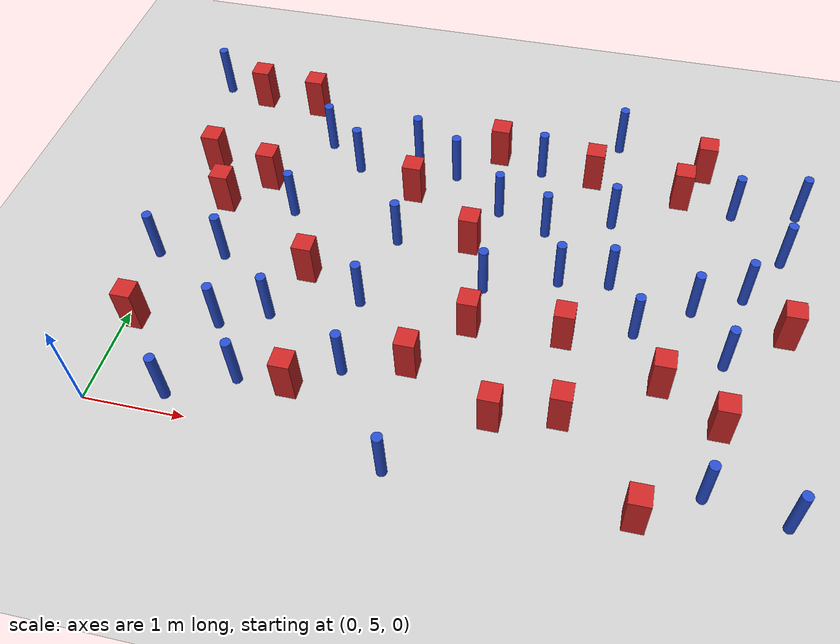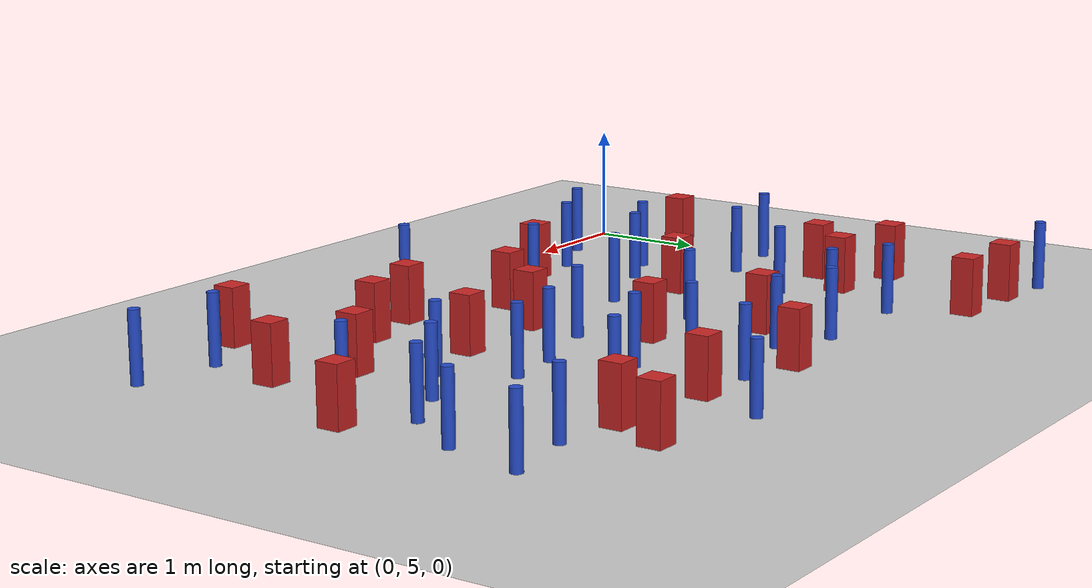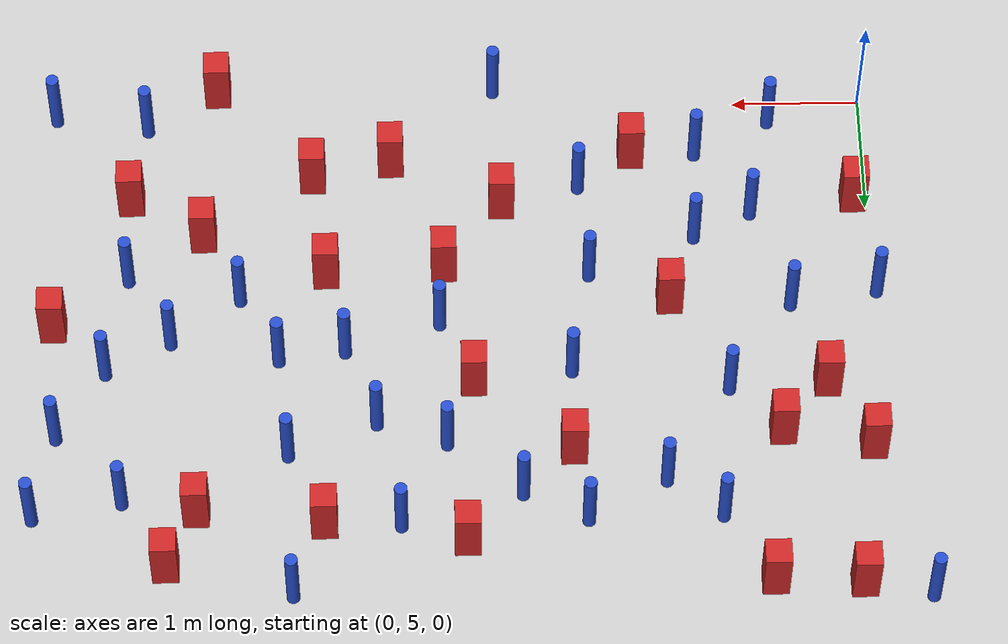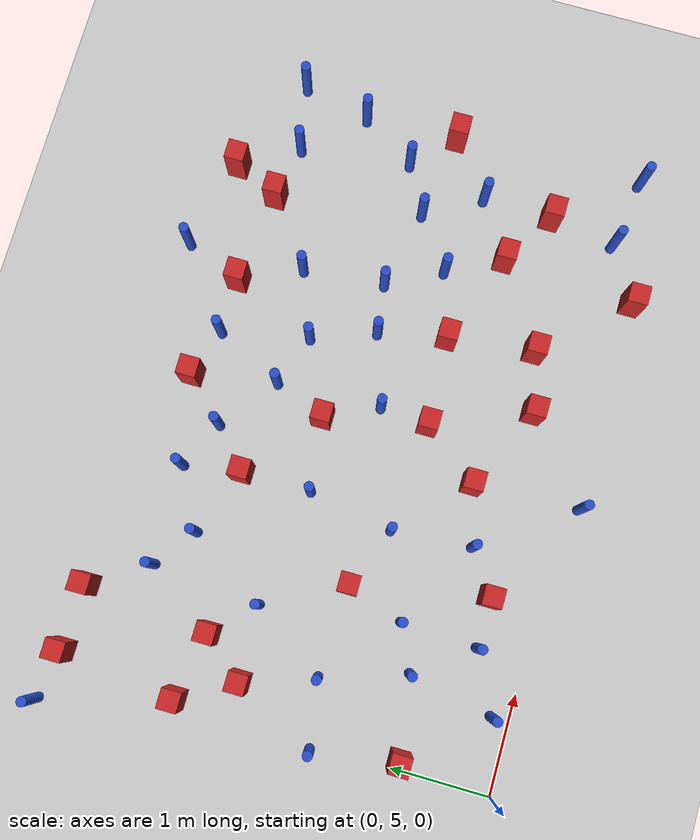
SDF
<sdf version="1.6">
 <world name="default">
  <model name="ground_plane">
   <static>1</static>
   <link name="link">
    <collision name="collision">
     <geometry><plane><normal>0 0 1</normal><size>100 100</size></plane></geometry>
     <surface><friction><ode><mu>100</mu><mu2>50</mu2></ode></friction></surface>
    </collision>
    <visual name="visual">
     <cast_shadows>0</cast_shadows>
     <geometry><plane><normal>0 0 1</normal><size>100 100</size></plane></geometry>
     <material>
      <ambient>1.0 1.0 1.0 1.0</ambient>
      <diffuse>0.8 0.8 0.8 1.0</diffuse>
      <specular>0.01 0.01 0.01 1.000000</specular>
     </material>
    </visual>
   </link>
  </model>
  <model name="square_post_obstacle1">
   <static>true</static>
   <pose>5.77959936031 5.86729845699 -4.36207812815e-07 3.75137919937e-06 9.77721102514e-07 2.47381364184e-05</pose>
   <link name="link">
    <pose>0 0 0.25 0 -0 0</pose>
    <inertial>
     <mass>100</mass>
     <inertia>
      <ixx>0.166667</ixx>
      <ixy>0</ixy>
      <ixz>0</ixz>
      <iyy>0.166667</iyy>
      <iyz>0</iyz>
      <izz>0.166667</izz>
     </inertia>
    </inertial>
    <collision name="collision"><geometry><box><size>.2 .2 .5</size></box></geometry></collision>
    <visual name="visual">
     <geometry><box><size>.2 .2 .5</size></box></geometry>
     <material>
      <script><name>Gazebo/Red</name><uri>file://media/materials/scripts/gazebo.material</uri></script>
     </material>
    </visual>
   </link>
  </model>
  <model name="pole_obstacle3">
   <static>true</static>
   <pose>5.80286417733 8.57099303402 -3.09024884793e-07 -7.19054271912e-07 -2.1131507513e-07 -1.93935509261e-07</pose>
   <link name="link">
    <pose>0 0 0.3 0 -0 0</pose>
    <inertial>
     <mass>1</mass>
     <inertia><ixx>0.145833</ixx><ixy>0</ixy><ixz>0</ixz><iyy>0.145833</iyy><iyz>0</iyz><izz>0.125</izz></inertia>
    </inertial>
    <collision name="collision">
     <geometry><cylinder><radius>0.05</radius><length>.6</length></cylinder></geometry>
    </collision>
    <visual name="visual">
     <geometry><cylinder><radius>0.05</radius><length>.6</length></cylinder></geometry>
     <material>
      <script><name>Gazebo/Blue</name><uri>file://media/materials/scripts/gazebo.material</uri></script>
     </material>
    </visual>
   </link>
  </model>
  <model name="pole_obstacle9">
   <static>true</static>
   <pose>4.54398680285 8.18161655679 -3.09024884793e-07 -7.19054271912e-07 -2.1131507513e-07 -1.93935509261e-07</pose>
   <link name="link">
    <pose>0 0 0.3 0 -0 0</pose>
    <inertial>
     <mass>1</mass>
     <inertia><ixx>0.145833</ixx><ixy>0</ixy><ixz>0</ixz><iyy>0.145833</iyy><iyz>0</iyz><izz>0.125</izz></inertia>
    </inertial>
    <collision name="collision">
     <geometry><cylinder><radius>0.05</radius><length>.6</length></cylinder></geometry>
    </collision>
    <visual name="visual">
     <geometry><cylinder><radius>0.05</radius><length>.6</length></cylinder></geometry>
     <material>
      <script><name>Gazebo/Blue</name><uri>file://media/materials/scripts/gazebo.material</uri></script>
     </material>
    </visual>
   </link>
  </model>
  <model name="pole_obstacle12">
   <static>true</static>
   <pose>3.68674259415 8.8054271333 -3.09024884848e-07 -7.19054271902e-07 -2.11315075199e-07 -1.93935509286e-07</pose>
   <link name="link">
    <pose>0 0 0.3 0 -0 0</pose>
    <inertial>
     <mass>1</mass>
     <inertia><ixx>0.145833</ixx><ixy>0</ixy><ixz>0</ixz><iyy>0.145833</iyy><iyz>0</iyz><izz>0.125</izz></inertia>
    </inertial>
    <collision name="collision">
     <geometry><cylinder><radius>0.05</radius><length>.6</length></cylinder></geometry>
    </collision>
    <visual name="visual">
     <geometry><cylinder><radius>0.05</radius><length>.6</length></cylinder></geometry>
     <material>
      <script><name>Gazebo/Blue</name><uri>file://media/materials/scripts/gazebo.material</uri></script>
     </material>
    </visual>
   </link>
  </model>
  <model name="square_post_obstacle16">
   <static>true</static>
   <pose>0.765612418779 8.0427565189 -4.36207812815e-07 3.75137919937e-06 9.77721102514e-07 2.47381364184e-05</pose>
   <link name="link">
    <pose>0 0 0.25 0 -0 0</pose>
    <inertial>
     <mass>100</mass>
     <inertia>
      <ixx>0.166667</ixx>
      <ixy>0</ixy>
      <ixz>0</ixz>
      <iyy>0.166667</iyy>
      <iyz>0</iyz>
      <izz>0.166667</izz>
     </inertia>
    </inertial>
    <collision name="collision"><geometry><box><size>.2 .2 .5</size></box></geometry></collision>
    <visual name="visual">
     <geometry><box><size>.2 .2 .5</size></box></geometry>
     <material>
      <script><name>Gazebo/Red</name><uri>file://media/materials/scripts/gazebo.material</uri></script>
     </material>
    </visual>
   </link>
  </model>
  <model name="square_post_obstacle17">
   <static>true</static>
   <pose>4.35246748363 5.68475245587 -4.36207812815e-07 3.75137919937e-06 9.77721102514e-07 2.47381364184e-05</pose>
   <link name="link">
    <pose>0 0 0.25 0 -0 0</pose>
    <inertial>
     <mass>100</mass>
     <inertia>
      <ixx>0.166667</ixx>
      <ixy>0</ixy>
      <ixz>0</ixz>
      <iyy>0.166667</iyy>
      <iyz>0</iyz>
      <izz>0.166667</izz>
     </inertia>
    </inertial>
    <collision name="collision"><geometry><box><size>.2 .2 .5</size></box></geometry></collision>
    <visual name="visual">
     <geometry><box><size>.2 .2 .5</size></box></geometry>
     <material>
      <script><name>Gazebo/Red</name><uri>file://media/materials/scripts/gazebo.material</uri></script>
     </material>
    </visual>
   </link>
  </model>
  <model name="pole_obstacle30">
   <static>true</static>
   <pose>5.45330103278 7.1637213019 -3.09024884793e-07 -7.19054271911e-07 -2.1131507516e-07 -1.93935509277e-07</pose>
   <link name="link">
    <pose>0 0 0.3 0 -0 0</pose>
    <inertial>
     <mass>1</mass>
     <inertia><ixx>0.145833</ixx><ixy>0</ixy><ixz>0</ixz><iyy>0.145833</iyy><iyz>0</iyz><izz>0.125</izz></inertia>
    </inertial>
    <collision name="collision">
     <geometry><cylinder><radius>0.05</radius><length>.6</length></cylinder></geometry>
    </collision>
    <visual name="visual">
     <geometry><cylinder><radius>0.05</radius><length>.6</length></cylinder></geometry>
     <material>
      <script><name>Gazebo/Blue</name><uri>file://media/materials/scripts/gazebo.material</uri></script>
     </material>
    </visual>
   </link>
  </model>
  <model name="square_post_obstacle25">
   <static>true</static>
   <pose>1.84017505871 5.49522138336 -4.36207812815e-07 3.75137919937e-06 9.77721102514e-07 2.47381364184e-05</pose>
   <link name="link">
    <pose>0 0 0.25 0 -0 0</pose>
    <inertial>
     <mass>100</mass>
     <inertia>
      <ixx>0.166667</ixx>
      <ixy>0</ixy>
      <ixz>0</ixz>
      <iyy>0.166667</iyy>
      <iyz>0</iyz>
      <izz>0.166667</izz>
     </inertia>
    </inertial>
    <collision name="collision"><geometry><box><size>.2 .2 .5</size></box></geometry></collision>
    <visual name="visual">
     <geometry><box><size>.2 .2 .5</size></box></geometry>
     <material>
      <script><name>Gazebo/Red</name><uri>file://media/materials/scripts/gazebo.material</uri></script>
     </material>
    </visual>
   </link>
  </model>
  <model name="square_post_obstacle30">
   <static>true</static>
   <pose>3.33337265653 6.52519556851 -4.36207812815e-07 3.75137919937e-06 9.77721102514e-07 2.47381364184e-05</pose>
   <link name="link">
    <pose>0 0 0.25 0 -0 0</pose>
    <inertial>
     <mass>100</mass>
     <inertia>
      <ixx>0.166667</ixx>
      <ixy>0</ixy>
      <ixz>0</ixz>
      <iyy>0.166667</iyy>
      <iyz>0</iyz>
      <izz>0.166667</izz>
     </inertia>
    </inertial>
    <collision name="collision"><geometry><box><size>.2 .2 .5</size></box></geometry></collision>
    <visual name="visual">
     <geometry><box><size>.2 .2 .5</size></box></geometry>
     <material>
      <script><name>Gazebo/Red</name><uri>file://media/materials/scripts/gazebo.material</uri></script>
     </material>
    </visual>
   </link>
  </model>
  <model name="pole_obstacle36">
   <static>true</static>
   <pose>0.643028839886 6.90297987783 -3.09024884793e-07 -7.19054271912e-07 -2.11315075129e-07 -1.93935509261e-07</pose>
   <link name="link">
    <pose>0 0 0.3 0 -0 0</pose>
    <inertial>
     <mass>1</mass>
     <inertia><ixx>0.145833</ixx><ixy>0</ixy><ixz>0</ixz><iyy>0.145833</iyy><iyz>0</iyz><izz>0.125</izz></inertia>
    </inertial>
    <collision name="collision">
     <geometry><cylinder><radius>0.05</radius><length>.6</length></cylinder></geometry>
    </collision>
    <visual name="visual">
     <geometry><cylinder><radius>0.05</radius><length>.6</length></cylinder></geometry>
     <material>
      <script><name>Gazebo/Blue</name><uri>file://media/materials/scripts/gazebo.material</uri></script>
     </material>
    </visual>
   </link>
  </model>
  <model name="pole_obstacle39">
   <static>true</static>
   <pose>4.5023912343 9.3906690146 -3.09024884793e-07 -7.19054271912e-07 -2.1131507513e-07 -1.93935509261e-07</pose>
   <link name="link">
    <pose>0 0 0.3 0 -0 0</pose>
    <inertial>
     <mass>1</mass>
     <inertia><ixx>0.145833</ixx><ixy>0</ixy><ixz>0</ixz><iyy>0.145833</iyy><iyz>0</iyz><izz>0.125</izz></inertia>
    </inertial>
    <collision name="collision">
     <geometry><cylinder><radius>0.05</radius><length>.6</length></cylinder></geometry>
    </collision>
    <visual name="visual">
     <geometry><cylinder><radius>0.05</radius><length>.6</length></cylinder></geometry>
     <material>
      <script><name>Gazebo/Blue</name><uri>file://media/materials/scripts/gazebo.material</uri></script>
     </material>
    </visual>
   </link>
  </model>
  <model name="pole_obstacle40">
   <static>true</static>
   <pose>2.26468639387 5.78236487332 -3.09024884793e-07 -7.19054271912e-07 -2.11315075134e-07 -1.93935509266e-07</pose>
   <link name="link">
    <pose>0 0 0.3 0 -0 0</pose>
    <inertial>
     <mass>1</mass>
     <inertia><ixx>0.145833</ixx><ixy>0</ixy><ixz>0</ixz><iyy>0.145833</iyy><iyz>0</iyz><izz>0.125</izz></inertia>
    </inertial>
    <collision name="collision">
     <geometry><cylinder><radius>0.05</radius><length>.6</length></cylinder></geometry>
    </collision>
    <visual name="visual">
     <geometry><cylinder><radius>0.05</radius><length>.6</length></cylinder></geometry>
     <material>
      <script><name>Gazebo/Blue</name><uri>file://media/materials/scripts/gazebo.material</uri></script>
     </material>
    </visual>
   </link>
  </model>
  <model name="pole_obstacle45">
   <static>true</static>
   <pose>5.66351207029 5.17743623265 -3.09024884793e-07 -7.19054271911e-07 -2.1131507516e-07 -1.93935509277e-07</pose>
   <link name="link">
    <pose>0 0 0.3 0 -0 0</pose>
    <inertial>
     <mass>1</mass>
     <inertia><ixx>0.145833</ixx><ixy>0</ixy><ixz>0</ixz><iyy>0.145833</iyy><iyz>0</iyz><izz>0.125</izz></inertia>
    </inertial>
    <collision name="collision">
     <geometry><cylinder><radius>0.05</radius><length>.6</length></cylinder></geometry>
    </collision>
    <visual name="visual">
     <geometry><cylinder><radius>0.05</radius><length>.6</length></cylinder></geometry>
     <material>
      <script><name>Gazebo/Blue</name><uri>file://media/materials/scripts/gazebo.material</uri></script>
     </material>
    </visual>
   </link>
  </model>
  <model name="square_post_obstacle35">
   <static>true</static>
   <pose>3.18902725416 8.95788062331 -4.36207812815e-07 3.75137919937e-06 9.77721102514e-07 2.47381364184e-05</pose>
   <link name="link">
    <pose>0 0 0.25 0 -0 0</pose>
    <inertial>
     <mass>100</mass>
     <inertia>
      <ixx>0.166667</ixx>
      <ixy>0</ixy>
      <ixz>0</ixz>
      <iyy>0.166667</iyy>
      <iyz>0</iyz>
      <izz>0.166667</izz>
     </inertia>
    </inertial>
    <collision name="collision"><geometry><box><size>.2 .2 .5</size></box></geometry></collision>
    <visual name="visual">
     <geometry><box><size>.2 .2 .5</size></box></geometry>
     <material>
      <script><name>Gazebo/Red</name><uri>file://media/materials/scripts/gazebo.material</uri></script>
     </material>
    </visual>
   </link>
  </model>
  <model name="square_post_obstacle36">
   <static>true</static>
   <pose>1.58505798549 6.85509384784 -4.36207812815e-07 3.75137919937e-06 9.77721102514e-07 2.47381364184e-05</pose>
   <link name="link">
    <pose>0 0 0.25 0 -0 0</pose>
    <inertial>
     <mass>100</mass>
     <inertia>
      <ixx>0.166667</ixx>
      <ixy>0</ixy>
      <ixz>0</ixz>
      <iyy>0.166667</iyy>
      <iyz>0</iyz>
      <izz>0.166667</izz>
     </inertia>
    </inertial>
    <collision name="collision"><geometry><box><size>.2 .2 .5</size></box></geometry></collision>
    <visual name="visual">
     <geometry><box><size>.2 .2 .5</size></box></geometry>
     <material>
      <script><name>Gazebo/Red</name><uri>file://media/materials/scripts/gazebo.material</uri></script>
     </material>
    </visual>
   </link>
  </model>
  <model name="pole_obstacle48">
   <static>true</static>
   <pose>3.37117523829 7.02716091844 -3.09024884793e-07 -7.19054271912e-07 -2.11315075134e-07 -1.93935509266e-07</pose>
   <link name="link">
    <pose>0 0 0.3 0 -0 0</pose>
    <inertial>
     <mass>1</mass>
     <inertia><ixx>0.145833</ixx><ixy>0</ixy><ixz>0</ixz><iyy>0.145833</iyy><iyz>0</iyz><izz>0.125</izz></inertia>
    </inertial>
    <collision name="collision">
     <geometry><cylinder><radius>0.05</radius><length>.6</length></cylinder></geometry>
    </collision>
    <visual name="visual">
     <geometry><cylinder><radius>0.05</radius><length>.6</length></cylinder></geometry>
     <material>
      <script><name>Gazebo/Blue</name><uri>file://media/materials/scripts/gazebo.material</uri></script>
     </material>
    </visual>
   </link>
  </model>
  <model name="square_post_obstacle38">
   <static>true</static>
   <pose>3.11801882603 7.56546651284 -4.36207812815e-07 3.75137919937e-06 9.77721102514e-07 2.47381364184e-05</pose>
   <link name="link">
    <pose>0 0 0.25 0 -0 0</pose>
    <inertial>
     <mass>100</mass>
     <inertia>
      <ixx>0.166667</ixx>
      <ixy>0</ixy>
      <ixz>0</ixz>
      <iyy>0.166667</iyy>
      <iyz>0</iyz>
      <izz>0.166667</izz>
     </inertia>
    </inertial>
    <collision name="collision"><geometry><box><size>.2 .2 .5</size></box></geometry></collision>
    <visual name="visual">
     <geometry><box><size>.2 .2 .5</size></box></geometry>
     <material>
      <script><name>Gazebo/Red</name><uri>file://media/materials/scripts/gazebo.material</uri></script>
     </material>
    </visual>
   </link>
  </model>
  <model name="pole_obstacle57">
   <static>true</static>
   <pose>-0.034254209917 6.79349831289 -3.09024884793e-07 -7.19054271912e-07 -2.11315075129e-07 -1.93935509263e-07</pose>
   <link name="link">
    <pose>0 0 0.3 0 -0 0</pose>
    <inertial>
     <mass>1</mass>
     <inertia><ixx>0.145833</ixx><ixy>0</ixy><ixz>0</ixz><iyy>0.145833</iyy><iyz>0</iyz><izz>0.125</izz></inertia>
    </inertial>
    <collision name="collision">
     <geometry><cylinder><radius>0.05</radius><length>.6</length></cylinder></geometry>
    </collision>
    <visual name="visual">
     <geometry><cylinder><radius>0.05</radius><length>.6</length></cylinder></geometry>
     <material>
      <script><name>Gazebo/Blue</name><uri>file://media/materials/scripts/gazebo.material</uri></script>
     </material>
    </visual>
   </link>
  </model>
  <model name="square_post_obstacle44">
   <static>true</static>
   <pose>3.73769453956 5.5416344028 -4.36207812815e-07 3.75137919937e-06 9.77721102514e-07 2.47381364184e-05</pose>
   <link name="link">
    <pose>0 0 0.25 0 -0 0</pose>
    <inertial>
     <mass>100</mass>
     <inertia>
      <ixx>0.166667</ixx>
      <ixy>0</ixy>
      <ixz>0</ixz>
      <iyy>0.166667</iyy>
      <iyz>0</iyz>
      <izz>0.166667</izz>
     </inertia>
    </inertial>
    <collision name="collision"><geometry><box><size>.2 .2 .5</size></box></geometry></collision>
    <visual name="visual">
     <geometry><box><size>.2 .2 .5</size></box></geometry>
     <material>
      <script><name>Gazebo/Red</name><uri>file://media/materials/scripts/gazebo.material</uri></script>
     </material>
    </visual>
   </link>
  </model>
  <model name="square_post_obstacle51">
   <static>true</static>
   <pose>0.101015819811 5.94064723729 -4.36207812815e-07 3.75137919937e-06 9.77721102514e-07 2.47381364184e-05</pose>
   <link name="link">
    <pose>0 0 0.25 0 -0 0</pose>
    <inertial>
     <mass>100</mass>
     <inertia>
      <ixx>0.166667</ixx>
      <ixy>0</ixy>
      <ixz>0</ixz>
      <iyy>0.166667</iyy>
      <iyz>0</iyz>
      <izz>0.166667</izz>
     </inertia>
    </inertial>
    <collision name="collision"><geometry><box><size>.2 .2 .5</size></box></geometry></collision>
    <visual name="visual">
     <geometry><box><size>.2 .2 .5</size></box></geometry>
     <material>
      <script><name>Gazebo/Red</name><uri>file://media/materials/scripts/gazebo.material</uri></script>
     </material>
    </visual>
   </link>
  </model>
  <model name="square_post_obstacle59">
   <static>true</static>
   <pose>0.401336211581 7.62415611407 -4.36207812815e-07 3.75137919937e-06 9.77721102514e-07 2.47381364184e-05</pose>
   <link name="link">
    <pose>0 0 0.25 0 -0 0</pose>
    <inertial>
     <mass>100</mass>
     <inertia>
      <ixx>0.166667</ixx>
      <ixy>0</ixy>
      <ixz>0</ixz>
      <iyy>0.166667</iyy>
      <iyz>0</iyz>
      <izz>0.166667</izz>
     </inertia>
    </inertial>
    <collision name="collision"><geometry><box><size>.2 .2 .5</size></box></geometry></collision>
    <visual name="visual">
     <geometry><box><size>.2 .2 .5</size></box></geometry>
     <material>
      <script><name>Gazebo/Red</name><uri>file://media/materials/scripts/gazebo.material</uri></script>
     </material>
    </visual>
   </link>
  </model>
  <model name="square_post_obstacle60">
   <static>true</static>
   <pose>0.22685126448 9.36915813873 -4.36207812815e-07 3.75137919937e-06 9.77721102514e-07 2.47381364184e-05</pose>
   <link name="link">
    <pose>0 0 0.25 0 -0 0</pose>
    <inertial>
     <mass>100</mass>
     <inertia>
      <ixx>0.166667</ixx>
      <ixy>0</ixy>
      <ixz>0</ixz>
      <iyy>0.166667</iyy>
      <iyz>0</iyz>
      <izz>0.166667</izz>
     </inertia>
    </inertial>
    <collision name="collision"><geometry><box><size>.2 .2 .5</size></box></geometry></collision>
    <visual name="visual">
     <geometry><box><size>.2 .2 .5</size></box></geometry>
     <material>
      <script><name>Gazebo/Red</name><uri>file://media/materials/scripts/gazebo.material</uri></script>
     </material>
    </visual>
   </link>
  </model>
  <model name="pole_obstacle73">
   <static>true</static>
   <pose>4.10526552284 7.2671888594 -3.09024884793e-07 -7.19054271911e-07 -2.1131507516e-07 -1.93935509277e-07</pose>
   <link name="link">
    <pose>0 0 0.3 0 -0 0</pose>
    <inertial>
     <mass>1</mass>
     <inertia><ixx>0.145833</ixx><ixy>0</ixy><ixz>0</ixz><iyy>0.145833</iyy><iyz>0</iyz><izz>0.125</izz></inertia>
    </inertial>
    <collision name="collision">
     <geometry><cylinder><radius>0.05</radius><length>.6</length></cylinder></geometry>
    </collision>
    <visual name="visual">
     <geometry><cylinder><radius>0.05</radius><length>.6</length></cylinder></geometry>
     <material>
      <script><name>Gazebo/Blue</name><uri>file://media/materials/scripts/gazebo.material</uri></script>
     </material>
    </visual>
   </link>
  </model>
  <model name="pole_obstacle78">
   <static>true</static>
   <pose>-0.286906203136 9.47515820763 -3.09024884793e-07 -7.19054271912e-07 -2.11315075163e-07 -1.93935509281e-07</pose>
   <link name="link">
    <pose>0 0 0.3 0 -0 0</pose>
    <inertial>
     <mass>1</mass>
     <inertia><ixx>0.145833</ixx><ixy>0</ixy><ixz>0</ixz><iyy>0.145833</iyy><iyz>0</iyz><izz>0.125</izz></inertia>
    </inertial>
    <collision name="collision">
     <geometry><cylinder><radius>0.05</radius><length>.6</length></cylinder></geometry>
    </collision>
    <visual name="visual">
     <geometry><cylinder><radius>0.05</radius><length>.6</length></cylinder></geometry>
     <material>
      <script><name>Gazebo/Blue</name><uri>file://media/materials/scripts/gazebo.material</uri></script>
     </material>
    </visual>
   </link>
  </model>
  <model name="pole_obstacle79">
   <static>true</static>
   <pose>4.61771906929 7.33641539779 -3.09024884793e-07 -7.19054271911e-07 -2.1131507516e-07 -1.93935509277e-07</pose>
   <link name="link">
    <pose>0 0 0.3 0 -0 0</pose>
    <inertial>
     <mass>1</mass>
     <inertia><ixx>0.145833</ixx><ixy>0</ixy><ixz>0</ixz><iyy>0.145833</iyy><iyz>0</iyz><izz>0.125</izz></inertia>
    </inertial>
    <collision name="collision">
     <geometry><cylinder><radius>0.05</radius><length>.6</length></cylinder></geometry>
    </collision>
    <visual name="visual">
     <geometry><cylinder><radius>0.05</radius><length>.6</length></cylinder></geometry>
     <material>
      <script><name>Gazebo/Blue</name><uri>file://media/materials/scripts/gazebo.material</uri></script>
     </material>
    </visual>
   </link>
  </model>
  <model name="pole_obstacle89">
   <static>true</static>
   <pose>1.15495305022 7.65230358398 -3.09024884793e-07 -7.19054271912e-07 -2.11315075134e-07 -1.93935509265e-07</pose>
   <link name="link">
    <pose>0 0 0.3 0 -0 0</pose>
    <inertial>
     <mass>1</mass>
     <inertia><ixx>0.145833</ixx><ixy>0</ixy><ixz>0</ixz><iyy>0.145833</iyy><iyz>0</iyz><izz>0.125</izz></inertia>
    </inertial>
    <collision name="collision">
     <geometry><cylinder><radius>0.05</radius><length>.6</length></cylinder></geometry>
    </collision>
    <visual name="visual">
     <geometry><cylinder><radius>0.05</radius><length>.6</length></cylinder></geometry>
     <material>
      <script><name>Gazebo/Blue</name><uri>file://media/materials/scripts/gazebo.material</uri></script>
     </material>
    </visual>
   </link>
  </model>
  <model name="pole_obstacle90">
   <static>true</static>
   <pose>0.917326834025 6.054098171 -3.09024884793e-07 -7.19054271912e-07 -2.11315075129e-07 -1.93935509261e-07</pose>
   <link name="link">
    <pose>0 0 0.3 0 -0 0</pose>
    <inertial>
     <mass>1</mass>
     <inertia><ixx>0.145833</ixx><ixy>0</ixy><ixz>0</ixz><iyy>0.145833</iyy><iyz>0</iyz><izz>0.125</izz></inertia>
    </inertial>
    <collision name="collision">
     <geometry><cylinder><radius>0.05</radius><length>.6</length></cylinder></geometry>
    </collision>
    <visual name="visual">
     <geometry><cylinder><radius>0.05</radius><length>.6</length></cylinder></geometry>
     <material>
      <script><name>Gazebo/Blue</name><uri>file://media/materials/scripts/gazebo.material</uri></script>
     </material>
    </visual>
   </link>
  </model>
  <model name="pole_obstacle93">
   <static>true</static>
   <pose>2.76147063602 8.54774690184 -3.09024884848e-07 -7.19054271902e-07 -2.11315075199e-07 -1.93935509286e-07</pose>
   <link name="link">
    <pose>0 0 0.3 0 -0 0</pose>
    <inertial>
     <mass>1</mass>
     <inertia><ixx>0.145833</ixx><ixy>0</ixy><ixz>0</ixz><iyy>0.145833</iyy><iyz>0</iyz><izz>0.125</izz></inertia>
    </inertial>
    <collision name="collision">
     <geometry><cylinder><radius>0.05</radius><length>.6</length></cylinder></geometry>
    </collision>
    <visual name="visual">
     <geometry><cylinder><radius>0.05</radius><length>.6</length></cylinder></geometry>
     <material>
      <script><name>Gazebo/Blue</name><uri>file://media/materials/scripts/gazebo.material</uri></script>
     </material>
    </visual>
   </link>
  </model>
  <model name="pole_obstacle100">
   <static>true</static>
   <pose>3.86556274004 7.91438691844 -3.09024884793e-07 -7.19054271912e-07 -2.11315075134e-07 -1.93935509266e-07</pose>
   <link name="link">
    <pose>0 0 0.3 0 -0 0</pose>
    <inertial>
     <mass>1</mass>
     <inertia><ixx>0.145833</ixx><ixy>0</ixy><ixz>0</ixz><iyy>0.145833</iyy><iyz>0</iyz><izz>0.125</izz></inertia>
    </inertial>
    <collision name="collision">
     <geometry><cylinder><radius>0.05</radius><length>.6</length></cylinder></geometry>
    </collision>
    <visual name="visual">
     <geometry><cylinder><radius>0.05</radius><length>.6</length></cylinder></geometry>
     <material>
      <script><name>Gazebo/Blue</name><uri>file://media/materials/scripts/gazebo.material</uri></script>
     </material>
    </visual>
   </link>
  </model>
  <model name="pole_obstacle102">
   <static>true</static>
   <pose>6.31923576487 7.99659930859 -3.09024884793e-07 -7.19054271912e-07 -2.11315075134e-07 -1.93935509264e-07</pose>
   <link name="link">
    <pose>0 0 0.3 0 -0 0</pose>
    <inertial>
     <mass>1</mass>
     <inertia><ixx>0.145833</ixx><ixy>0</ixy><ixz>0</ixz><iyy>0.145833</iyy><iyz>0</iyz><izz>0.125</izz></inertia>
    </inertial>
    <collision name="collision">
     <geometry><cylinder><radius>0.05</radius><length>.6</length></cylinder></geometry>
    </collision>
    <visual name="visual">
     <geometry><cylinder><radius>0.05</radius><length>.6</length></cylinder></geometry>
     <material>
      <script><name>Gazebo/Blue</name><uri>file://media/materials/scripts/gazebo.material</uri></script>
     </material>
    </visual>
   </link>
  </model>
  <model name="pole_obstacle105">
   <static>true</static>
   <pose>5.95332889197 7.42818961892 -3.09024884793e-07 -7.19054271911e-07 -2.1131507516e-07 -1.93935509277e-07</pose>
   <link name="link">
    <pose>0 0 0.3 0 -0 0</pose>
    <inertial>
     <mass>1</mass>
     <inertia><ixx>0.145833</ixx><ixy>0</ixy><ixz>0</ixz><iyy>0.145833</iyy><iyz>0</iyz><izz>0.125</izz></inertia>
    </inertial>
    <collision name="collision">
     <geometry><cylinder><radius>0.05</radius><length>.6</length></cylinder></geometry>
    </collision>
    <visual name="visual">
     <geometry><cylinder><radius>0.05</radius><length>.6</length></cylinder></geometry>
     <material>
      <script><name>Gazebo/Blue</name><uri>file://media/materials/scripts/gazebo.material</uri></script>
     </material>
    </visual>
   </link>
  </model>
  <model name="square_post_obstacle105">
   <static>true</static>
   <pose>4.26686722113 8.79361753884 -4.36207812815e-07 3.75137919937e-06 9.77721102514e-07 2.47381364184e-05</pose>
   <link name="link">
    <pose>0 0 0.25 0 -0 0</pose>
    <inertial>
     <mass>100</mass>
     <inertia>
      <ixx>0.166667</ixx>
      <ixy>0</ixy>
      <ixz>0</ixz>
      <iyy>0.166667</iyy>
      <iyz>0</iyz>
      <izz>0.166667</izz>
     </inertia>
    </inertial>
    <collision name="collision"><geometry><box><size>.2 .2 .5</size></box></geometry></collision>
    <visual name="visual">
     <geometry><box><size>.2 .2 .5</size></box></geometry>
     <material>
      <script><name>Gazebo/Red</name><uri>file://media/materials/scripts/gazebo.material</uri></script>
     </material>
    </visual>
   </link>
  </model>
  <model name="square_post_obstacle111">
   <static>true</static>
   <pose>0.0802762848484 8.18201807291 -4.36207812815e-07 3.75137919937e-06 9.77721102514e-07 2.47381364184e-05</pose>
   <link name="link">
    <pose>0 0 0.25 0 -0 0</pose>
    <inertial>
     <mass>100</mass>
     <inertia>
      <ixx>0.166667</ixx>
      <ixy>0</ixy>
      <ixz>0</ixz>
      <iyy>0.166667</iyy>
      <iyz>0</iyz>
      <izz>0.166667</izz>
     </inertia>
    </inertial>
    <collision name="collision"><geometry><box><size>.2 .2 .5</size></box></geometry></collision>
    <visual name="visual">
     <geometry><box><size>.2 .2 .5</size></box></geometry>
     <material>
      <script><name>Gazebo/Red</name><uri>file://media/materials/scripts/gazebo.material</uri></script>
     </material>
    </visual>
   </link>
  </model>
  <model name="square_post_obstacle114">
   <static>true</static>
   <pose>5.23527661191 8.6770319012 -4.36207812815e-07 3.75137919937e-06 9.77721102514e-07 2.47381364184e-05</pose>
   <link name="link">
    <pose>0 0 0.25 0 -0 0</pose>
    <inertial>
     <mass>100</mass>
     <inertia>
      <ixx>0.166667</ixx>
      <ixy>0</ixy>
      <ixz>0</ixz>
      <iyy>0.166667</iyy>
      <iyz>0</iyz>
      <izz>0.166667</izz>
     </inertia>
    </inertial>
    <collision name="collision"><geometry><box><size>.2 .2 .5</size></box></geometry></collision>
    <visual name="visual">
     <geometry><box><size>.2 .2 .5</size></box></geometry>
     <material>
      <script><name>Gazebo/Red</name><uri>file://media/materials/scripts/gazebo.material</uri></script>
     </material>
    </visual>
   </link>
  </model>
  <model name="pole_obstacle119">
   <static>true</static>
   <pose>5.79012112269 6.58591334682 -3.09024884793e-07 -7.19054271911e-07 -2.1131507516e-07 -1.93935509277e-07</pose>
   <link name="link">
    <pose>0 0 0.3 0 -0 0</pose>
    <inertial>
     <mass>1</mass>
     <inertia><ixx>0.145833</ixx><ixy>0</ixy><ixz>0</ixz><iyy>0.145833</iyy><iyz>0</iyz><izz>0.125</izz></inertia>
    </inertial>
    <collision name="collision">
     <geometry><cylinder><radius>0.05</radius><length>.6</length></cylinder></geometry>
    </collision>
    <visual name="visual">
     <geometry><cylinder><radius>0.05</radius><length>.6</length></cylinder></geometry>
     <material>
      <script><name>Gazebo/Blue</name><uri>file://media/materials/scripts/gazebo.material</uri></script>
     </material>
    </visual>
   </link>
  </model>
  <model name="pole_obstacle126">
   <static>true</static>
   <pose>2.91660136822 4.85134352019 -3.09024884793e-07 -7.19054271912e-07 -2.11315075134e-07 -1.93935509266e-07</pose>
   <link name="link">
    <pose>0 0 0.3 0 -0 0</pose>
    <inertial>
     <mass>1</mass>
     <inertia><ixx>0.145833</ixx><ixy>0</ixy><ixz>0</ixz><iyy>0.145833</iyy><iyz>0</iyz><izz>0.125</izz></inertia>
    </inertial>
    <collision name="collision">
     <geometry><cylinder><radius>0.05</radius><length>.6</length></cylinder></geometry>
    </collision>
    <visual name="visual">
     <geometry><cylinder><radius>0.05</radius><length>.6</length></cylinder></geometry>
     <material>
      <script><name>Gazebo/Blue</name><uri>file://media/materials/scripts/gazebo.material</uri></script>
     </material>
    </visual>
   </link>
  </model>
  <model name="square_post_obstacle135">
   <static>true</static>
   <pose>2.87225371253 5.94864959132 -4.36207812815e-07 3.75137919937e-06 9.77721102514e-07 2.47381364184e-05</pose>
   <link name="link">
    <pose>0 0 0.25 0 -0 0</pose>
    <inertial>
     <mass>100</mass>
     <inertia>
      <ixx>0.166667</ixx>
      <ixy>0</ixy>
      <ixz>0</ixz>
      <iyy>0.166667</iyy>
      <iyz>0</iyz>
      <izz>0.166667</izz>
     </inertia>
    </inertial>
    <collision name="collision"><geometry><box><size>.2 .2 .5</size></box></geometry></collision>
    <visual name="visual">
     <geometry><box><size>.2 .2 .5</size></box></geometry>
     <material>
      <script><name>Gazebo/Red</name><uri>file://media/materials/scripts/gazebo.material</uri></script>
     </material>
    </visual>
   </link>
  </model>
  <model name="pole_obstacle143">
   <static>true</static>
   <pose>2.20342716527 6.60157447879 -3.09024884793e-07 -7.19054271912e-07 -2.11315075134e-07 -1.93935509266e-07</pose>
   <link name="link">
    <pose>0 0 0.3 0 -0 0</pose>
    <inertial>
     <mass>1</mass>
     <inertia><ixx>0.145833</ixx><ixy>0</ixy><ixz>0</ixz><iyy>0.145833</iyy><iyz>0</iyz><izz>0.125</izz></inertia>
    </inertial>
    <collision name="collision">
     <geometry><cylinder><radius>0.05</radius><length>.6</length></cylinder></geometry>
    </collision>
    <visual name="visual">
     <geometry><cylinder><radius>0.05</radius><length>.6</length></cylinder></geometry>
     <material>
      <script><name>Gazebo/Blue</name><uri>file://media/materials/scripts/gazebo.material</uri></script>
     </material>
    </visual>
   </link>
  </model>
  <model name="pole_obstacle147">
   <static>true</static>
   <pose>4.91870861013 6.77955795301 -3.09024884793e-07 -7.19054271911e-07 -2.1131507516e-07 -1.93935509277e-07</pose>
   <link name="link">
    <pose>0 0 0.3 0 -0 0</pose>
    <inertial>
     <mass>1</mass>
     <inertia><ixx>0.145833</ixx><ixy>0</ixy><ixz>0</ixz><iyy>0.145833</iyy><iyz>0</iyz><izz>0.125</izz></inertia>
    </inertial>
    <collision name="collision">
     <geometry><cylinder><radius>0.05</radius><length>.6</length></cylinder></geometry>
    </collision>
    <visual name="visual">
     <geometry><cylinder><radius>0.05</radius><length>.6</length></cylinder></geometry>
     <material>
      <script><name>Gazebo/Blue</name><uri>file://media/materials/scripts/gazebo.material</uri></script>
     </material>
    </visual>
   </link>
  </model>
  <model name="pole_obstacle163">
   <static>true</static>
   <pose>1.25030242189 8.76453978432 -3.09024884793e-07 -7.19054271912e-07 -2.1131507515e-07 -1.93935509273e-07</pose>
   <link name="link">
    <pose>0 0 0.3 0 -0 0</pose>
    <inertial>
     <mass>1</mass>
     <inertia><ixx>0.145833</ixx><ixy>0</ixy><ixz>0</ixz><iyy>0.145833</iyy><iyz>0</iyz><izz>0.125</izz></inertia>
    </inertial>
    <collision name="collision">
     <geometry><cylinder><radius>0.05</radius><length>.6</length></cylinder></geometry>
    </collision>
    <visual name="visual">
     <geometry><cylinder><radius>0.05</radius><length>.6</length></cylinder></geometry>
     <material>
      <script><name>Gazebo/Blue</name><uri>file://media/materials/scripts/gazebo.material</uri></script>
     </material>
    </visual>
   </link>
  </model>
  <model name="square_post_obstacle162">
   <static>true</static>
   <pose>5.45892113862 9.14657925613 -4.36207812815e-07 3.75137919937e-06 9.77721102514e-07 2.47381364184e-05</pose>
   <link name="link">
    <pose>0 0 0.25 0 -0 0</pose>
    <inertial>
     <mass>100</mass>
     <inertia>
      <ixx>0.166667</ixx>
      <ixy>0</ixy>
      <ixz>0</ixz>
      <iyy>0.166667</iyy>
      <iyz>0</iyz>
      <izz>0.166667</izz>
     </inertia>
    </inertial>
    <collision name="collision"><geometry><box><size>.2 .2 .5</size></box></geometry></collision>
    <visual name="visual">
     <geometry><box><size>.2 .2 .5</size></box></geometry>
     <material>
      <script><name>Gazebo/Red</name><uri>file://media/materials/scripts/gazebo.material</uri></script>
     </material>
    </visual>
   </link>
  </model>
  <model name="square_post_obstacle169">
   <static>true</static>
   <pose>0.894193170796 9.33350281402 -4.36207812815e-07 3.75137919937e-06 9.77721102514e-07 2.47381364184e-05</pose>
   <link name="link">
    <pose>0 0 0.25 0 -0 0</pose>
    <inertial>
     <mass>100</mass>
     <inertia>
      <ixx>0.166667</ixx>
      <ixy>0</ixy>
      <ixz>0</ixz>
      <iyy>0.166667</iyy>
      <iyz>0</iyz>
      <izz>0.166667</izz>
     </inertia>
    </inertial>
    <collision name="collision"><geometry><box><size>.2 .2 .5</size></box></geometry></collision>
    <visual name="visual">
     <geometry><box><size>.2 .2 .5</size></box></geometry>
     <material>
      <script><name>Gazebo/Red</name><uri>file://media/materials/scripts/gazebo.material</uri></script>
     </material>
    </visual>
   </link>
  </model>
  <model name="pole_obstacle171">
   <static>true</static>
   <pose>6.39127303576 5.06120178968 -3.09024884793e-07 -7.19054271911e-07 -2.1131507516e-07 -1.93935509277e-07</pose>
   <link name="link">
    <pose>0 0 0.3 0 -0 0</pose>
    <inertial>
     <mass>1</mass>
     <inertia><ixx>0.145833</ixx><ixy>0</ixy><ixz>0</ixz><iyy>0.145833</iyy><iyz>0</iyz><izz>0.125</izz></inertia>
    </inertial>
    <collision name="collision">
     <geometry><cylinder><radius>0.05</radius><length>.6</length></cylinder></geometry>
    </collision>
    <visual name="visual">
     <geometry><cylinder><radius>0.05</radius><length>.6</length></cylinder></geometry>
     <material>
      <script><name>Gazebo/Blue</name><uri>file://media/materials/scripts/gazebo.material</uri></script>
     </material>
    </visual>
   </link>
  </model>
  <model name="square_post_obstacle180">
   <static>true</static>
   <pose>2.366163695 8.18460341498 -4.36207812815e-07 3.75137919937e-06 9.77721102514e-07 2.47381364184e-05</pose>
   <link name="link">
    <pose>0 0 0.25 0 -0 0</pose>
    <inertial>
     <mass>100</mass>
     <inertia>
      <ixx>0.166667</ixx>
      <ixy>0</ixy>
      <ixz>0</ixz>
      <iyy>0.166667</iyy>
      <iyz>0</iyz>
      <izz>0.166667</izz>
     </inertia>
    </inertial>
    <collision name="collision"><geometry><box><size>.2 .2 .5</size></box></geometry></collision>
    <visual name="visual">
     <geometry><box><size>.2 .2 .5</size></box></geometry>
     <material>
      <script><name>Gazebo/Red</name><uri>file://media/materials/scripts/gazebo.material</uri></script>
     </material>
    </visual>
   </link>
  </model>
  <model name="square_post_obstacle186">
   <static>true</static>
   <pose>6.36283084625 7.0216156284 -4.36207812815e-07 3.75137919937e-06 9.77721102514e-07 2.47381364184e-05</pose>
   <link name="link">
    <pose>0 0 0.25 0 -0 0</pose>
    <inertial>
     <mass>100</mass>
     <inertia>
      <ixx>0.166667</ixx>
      <ixy>0</ixy>
      <ixz>0</ixz>
      <iyy>0.166667</iyy>
      <iyz>0</iyz>
      <izz>0.166667</izz>
     </inertia>
    </inertial>
    <collision name="collision"><geometry><box><size>.2 .2 .5</size></box></geometry></collision>
    <visual name="visual">
     <geometry><box><size>.2 .2 .5</size></box></geometry>
     <material>
      <script><name>Gazebo/Red</name><uri>file://media/materials/scripts/gazebo.material</uri></script>
     </material>
    </visual>
   </link>
  </model>
  <model name="square_post_obstacle187">
   <static>true</static>
   <pose>4.25018477662 6.57208250227 -4.36207812815e-07 3.75137919937e-06 9.77721102514e-07 2.47381364184e-05</pose>
   <link name="link">
    <pose>0 0 0.25 0 -0 0</pose>
    <inertial>
     <mass>100</mass>
     <inertia>
      <ixx>0.166667</ixx>
      <ixy>0</ixy>
      <ixz>0</ixz>
      <iyy>0.166667</iyy>
      <iyz>0</iyz>
      <izz>0.166667</izz>
     </inertia>
    </inertial>
    <collision name="collision"><geometry><box><size>.2 .2 .5</size></box></geometry></collision>
    <visual name="visual">
     <geometry><box><size>.2 .2 .5</size></box></geometry>
     <material>
      <script><name>Gazebo/Red</name><uri>file://media/materials/scripts/gazebo.material</uri></script>
     </material>
    </visual>
   </link>
  </model>
  <model name="square_post_obstacle191">
   <static>true</static>
   <pose>5.10950995972 4.84954945624 -4.36207812815e-07 3.75137919937e-06 9.77721102514e-07 2.47381364184e-05</pose>
   <link name="link">
    <pose>0 0 0.25 0 -0 0</pose>
    <inertial>
     <mass>100</mass>
     <inertia>
      <ixx>0.166667</ixx>
      <ixy>0</ixy>
      <ixz>0</ixz>
      <iyy>0.166667</iyy>
      <iyz>0</iyz>
      <izz>0.166667</izz>
     </inertia>
    </inertial>
    <collision name="collision"><geometry><box><size>.2 .2 .5</size></box></geometry></collision>
    <visual name="visual">
     <geometry><box><size>.2 .2 .5</size></box></geometry>
     <material>
      <script><name>Gazebo/Red</name><uri>file://media/materials/scripts/gazebo.material</uri></script>
     </material>
    </visual>
   </link>
  </model>
  <model name="square_post_obstacle197">
   <static>true</static>
   <pose>5.2079849893 6.2181455295 -4.36207812815e-07 3.75137919937e-06 9.77721102514e-07 2.47381364184e-05</pose>
   <link name="link">
    <pose>0 0 0.25 0 -0 0</pose>
    <inertial>
     <mass>100</mass>
     <inertia>
      <ixx>0.166667</ixx>
      <ixy>0</ixy>
      <ixz>0</ixz>
      <iyy>0.166667</iyy>
      <iyz>0</iyz>
      <izz>0.166667</izz>
     </inertia>
    </inertial>
    <collision name="collision"><geometry><box><size>.2 .2 .5</size></box></geometry></collision>
    <visual name="visual">
     <geometry><box><size>.2 .2 .5</size></box></geometry>
     <material>
      <script><name>Gazebo/Red</name><uri>file://media/materials/scripts/gazebo.material</uri></script>
     </material>
    </visual>
   </link>
  </model>
  <model name="pole_obstacle191">
   <static>true</static>
   <pose>0.736481877065 5.19000292009 -3.09024884793e-07 -7.19054271912e-07 -2.11315075129e-07 -1.93935509261e-07</pose>
   <link name="link">
    <pose>0 0 0.3 0 -0 0</pose>
    <inertial>
     <mass>1</mass>
     <inertia><ixx>0.145833</ixx><ixy>0</ixy><ixz>0</ixz><iyy>0.145833</iyy><iyz>0</iyz><izz>0.125</izz></inertia>
    </inertial>
    <collision name="collision">
     <geometry><cylinder><radius>0.05</radius><length>.6</length></cylinder></geometry>
    </collision>
    <visual name="visual">
     <geometry><cylinder><radius>0.05</radius><length>.6</length></cylinder></geometry>
     <material>
      <script><name>Gazebo/Blue</name><uri>file://media/materials/scripts/gazebo.material</uri></script>
     </material>
    </visual>
   </link>
  </model>
  <model name="pole_obstacle195">
   <static>true</static>
   <pose>6.48211448267 8.69960213184 -3.09024884793e-07 -7.19054271912e-07 -2.1131507513e-07 -1.93935509261e-07</pose>
   <link name="link">
    <pose>0 0 0.3 0 -0 0</pose>
    <inertial>
     <mass>1</mass>
     <inertia><ixx>0.145833</ixx><ixy>0</ixy><ixz>0</ixz><iyy>0.145833</iyy><iyz>0</iyz><izz>0.125</izz></inertia>
    </inertial>
    <collision name="collision">
     <geometry><cylinder><radius>0.05</radius><length>.6</length></cylinder></geometry>
    </collision>
    <visual name="visual">
     <geometry><cylinder><radius>0.05</radius><length>.6</length></cylinder></geometry>
     <material>
      <script><name>Gazebo/Blue</name><uri>file://media/materials/scripts/gazebo.material</uri></script>
     </material>
    </visual>
   </link>
  </model>
  <model name="pole_obstacle197">
   <static>true</static>
   <pose>2.35878445214 7.47199082574 -3.09024884793e-07 -7.19054271912e-07 -2.11315075134e-07 -1.93935509266e-07</pose>
   <link name="link">
    <pose>0 0 0.3 0 -0 0</pose>
    <inertial>
     <mass>1</mass>
     <inertia><ixx>0.145833</ixx><ixy>0</ixy><ixz>0</ixz><iyy>0.145833</iyy><iyz>0</iyz><izz>0.125</izz></inertia>
    </inertial>
    <collision name="collision">
     <geometry><cylinder><radius>0.05</radius><length>.6</length></cylinder></geometry>
    </collision>
    <visual name="visual">
     <geometry><cylinder><radius>0.05</radius><length>.6</length></cylinder></geometry>
     <material>
      <script><name>Gazebo/Blue</name><uri>file://media/materials/scripts/gazebo.material</uri></script>
     </material>
    </visual>
   </link>
  </model>
  <model name="pole_obstacle202">
   <static>true</static>
   <pose>2.270895306 8.78045872033 -3.09024884848e-07 -7.19054271902e-07 -2.11315075199e-07 -1.93935509286e-07</pose>
   <link name="link">
    <pose>0 0 0.3 0 -0 0</pose>
    <inertial>
     <mass>1</mass>
     <inertia><ixx>0.145833</ixx><ixy>0</ixy><ixz>0</ixz><iyy>0.145833</iyy><iyz>0</iyz><izz>0.125</izz></inertia>
    </inertial>
    <collision name="collision">
     <geometry><cylinder><radius>0.05</radius><length>.6</length></cylinder></geometry>
    </collision>
    <visual name="visual">
     <geometry><cylinder><radius>0.05</radius><length>.6</length></cylinder></geometry>
     <material>
      <script><name>Gazebo/Blue</name><uri>file://media/materials/scripts/gazebo.material</uri></script>
     </material>
    </visual>
   </link>
  </model>
  <model name="pole_obstacle203">
   <static>true</static>
   <pose>1.33212448522 5.48683221798 -3.09024884793e-07 -7.19054271912e-07 -2.11315075134e-07 -1.93935509265e-07</pose>
   <link name="link">
    <pose>0 0 0.3 0 -0 0</pose>
    <inertial>
     <mass>1</mass>
     <inertia><ixx>0.145833</ixx><ixy>0</ixy><ixz>0</ixz><iyy>0.145833</iyy><iyz>0</iyz><izz>0.125</izz></inertia>
    </inertial>
    <collision name="collision">
     <geometry><cylinder><radius>0.05</radius><length>.6</length></cylinder></geometry>
    </collision>
    <visual name="visual">
     <geometry><cylinder><radius>0.05</radius><length>.6</length></cylinder></geometry>
     <material>
      <script><name>Gazebo/Blue</name><uri>file://media/materials/scripts/gazebo.material</uri></script>
     </material>
    </visual>
   </link>
  </model>
  <model name="pole_obstacle209">
   <static>true</static>
   <pose>1.36987788725 6.26836164287 -3.09024884793e-07 -7.19054271912e-07 -2.11315075134e-07 -1.93935509265e-07</pose>
   <link name="link">
    <pose>0 0 0.3 0 -0 0</pose>
    <inertial>
     <mass>1</mass>
     <inertia><ixx>0.145833</ixx><ixy>0</ixy><ixz>0</ixz><iyy>0.145833</iyy><iyz>0</iyz><izz>0.125</izz></inertia>
    </inertial>
    <collision name="collision">
     <geometry><cylinder><radius>0.05</radius><length>.6</length></cylinder></geometry>
    </collision>
    <visual name="visual">
     <geometry><cylinder><radius>0.05</radius><length>.6</length></cylinder></geometry>
     <material>
      <script><name>Gazebo/Blue</name><uri>file://media/materials/scripts/gazebo.material</uri></script>
     </material>
    </visual>
   </link>
  </model>
  <model name="pole_obstacle214">
   <static>true</static>
   <pose>3.32988817563 8.10168421801 -3.09024884848e-07 -7.19054271902e-07 -2.11315075199e-07 -1.93935509286e-07</pose>
   <link name="link">
    <pose>0 0 0.3 0 -0 0</pose>
    <inertial>
     <mass>1</mass>
     <inertia><ixx>0.145833</ixx><ixy>0</ixy><ixz>0</ixz><iyy>0.145833</iyy><iyz>0</iyz><izz>0.125</izz></inertia>
    </inertial>
    <collision name="collision">
     <geometry><cylinder><radius>0.05</radius><length>.6</length></cylinder></geometry>
    </collision>
    <visual name="visual">
     <geometry><cylinder><radius>0.05</radius><length>.6</length></cylinder></geometry>
     <material>
      <script><name>Gazebo/Blue</name><uri>file://media/materials/scripts/gazebo.material</uri></script>
     </material>
    </visual>
   </link>
  </model>
  <model name="pole_obstacle229">
   <static>true</static>
   <pose>1.66700000976 8.45178002078 -3.09024884793e-07 -7.19054271912e-07 -2.1131507515e-07 -1.93935509273e-07</pose>
   <link name="link">
    <pose>0 0 0.3 0 -0 0</pose>
    <inertial>
     <mass>1</mass>
     <inertia><ixx>0.145833</ixx><ixy>0</ixy><ixz>0</ixz><iyy>0.145833</iyy><iyz>0</iyz><izz>0.125</izz></inertia>
    </inertial>
    <collision name="collision">
     <geometry><cylinder><radius>0.05</radius><length>.6</length></cylinder></geometry>
    </collision>
    <visual name="visual">
     <geometry><cylinder><radius>0.05</radius><length>.6</length></cylinder></geometry>
     <material>
      <script><name>Gazebo/Blue</name><uri>file://media/materials/scripts/gazebo.material</uri></script>
     </material>
    </visual>
   </link>
  </model>
 </world>
</sdf>
